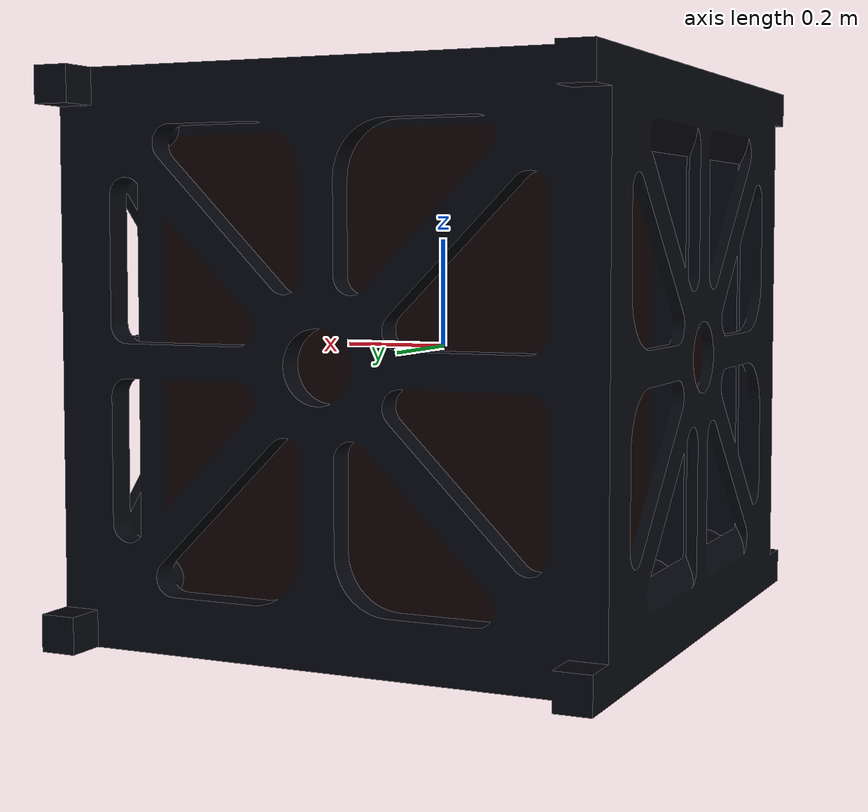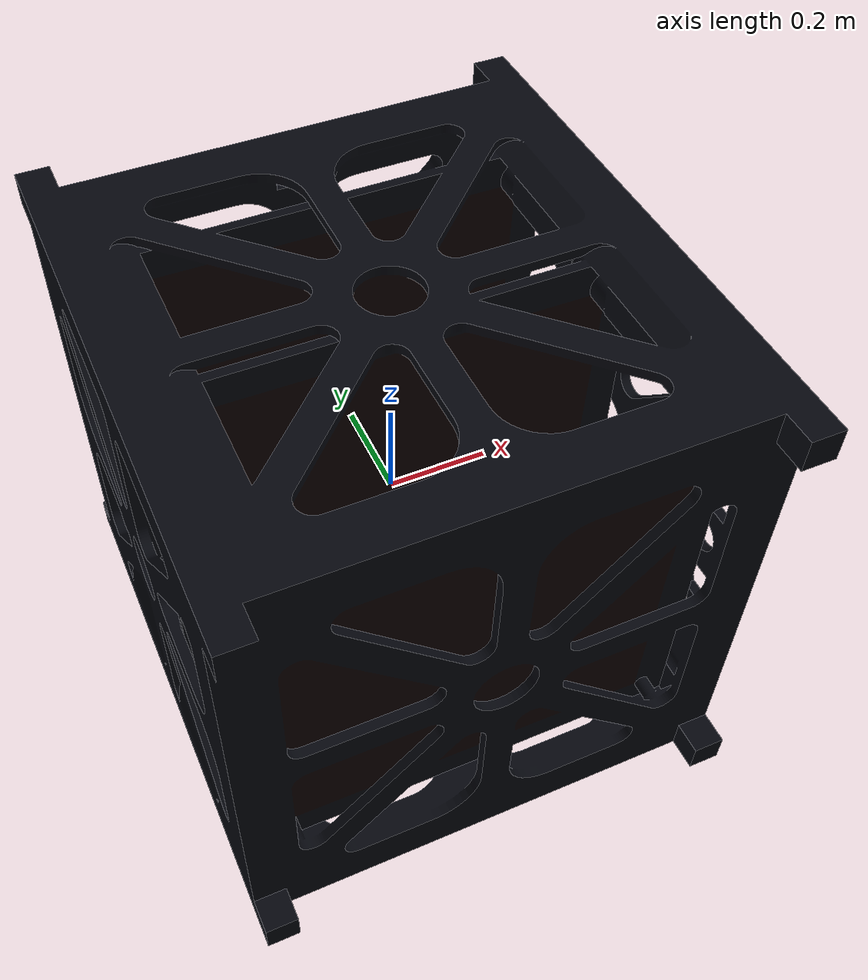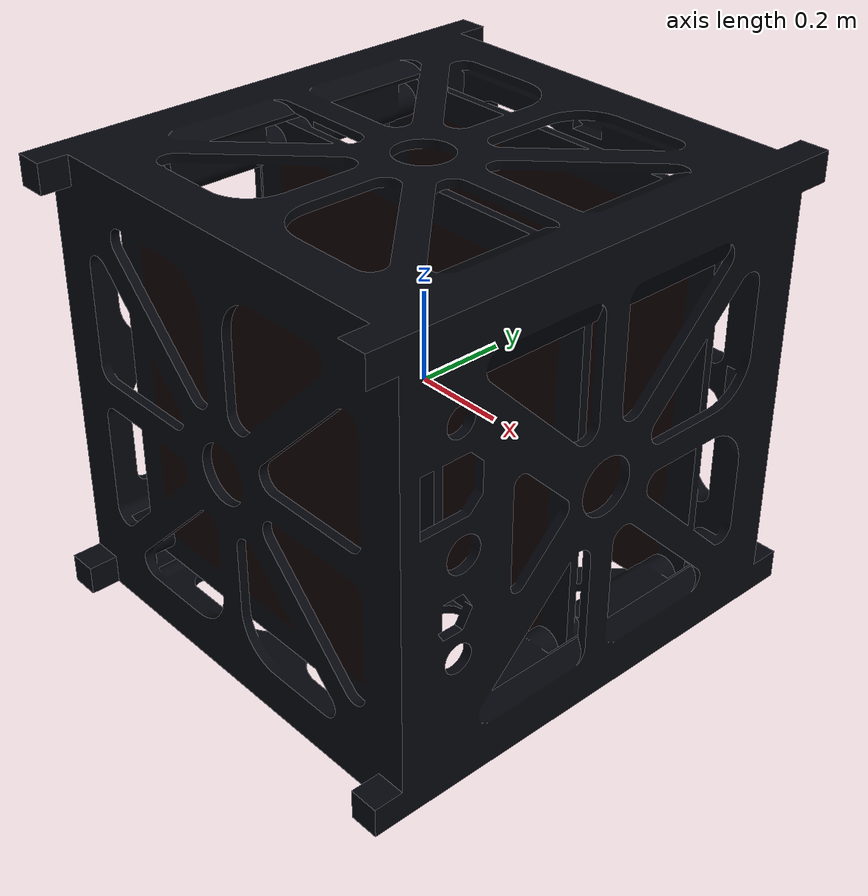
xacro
<?xml version="1.0"?>

<robot name="cubesat_full" xmlns:xacro="http://wiki.ros.org/xacro" >

    <xacro:property name="ID" value="$(arg id)" />
    <xacro:property name="robot_name" value="cubesat_$(arg id)" />

    <xacro:property name="M_PI" value="3.1415926535897931" />

    <!-- Included URDF Files -->

    <!-- Base airframe -->
    <xacro:include filename="$(find docking)/urdf/cubesat_base.urdf.xacro"/>
    <link name="base_link">

      <inertial>
	      <origin xyz="0 0 0" rpy="0 0 0" />
        <mass value="1.477" />
        <origin xyz="0 0 0" />
        <inertia ixx="0.01152" ixy="0.0" ixz="0.0" iyy="0.01152" iyz="0.0" izz="0.0218" />
      </inertial>

      <visual>
        <origin xyz="0 0 0" rpy="0 0 0" />
        <geometry>
          <mesh filename="package://docking/meshes/cubesat/cubesat.dae"/>
        </geometry>
      </visual>

      <collision>
        <origin xyz="0 0 0" rpy="0 0 0" />
        <geometry>
          <mesh filename="package://docking/meshes/cubesat/cubesat.dae"/>
        </geometry>
      </collision>
    </link>

</robot>
